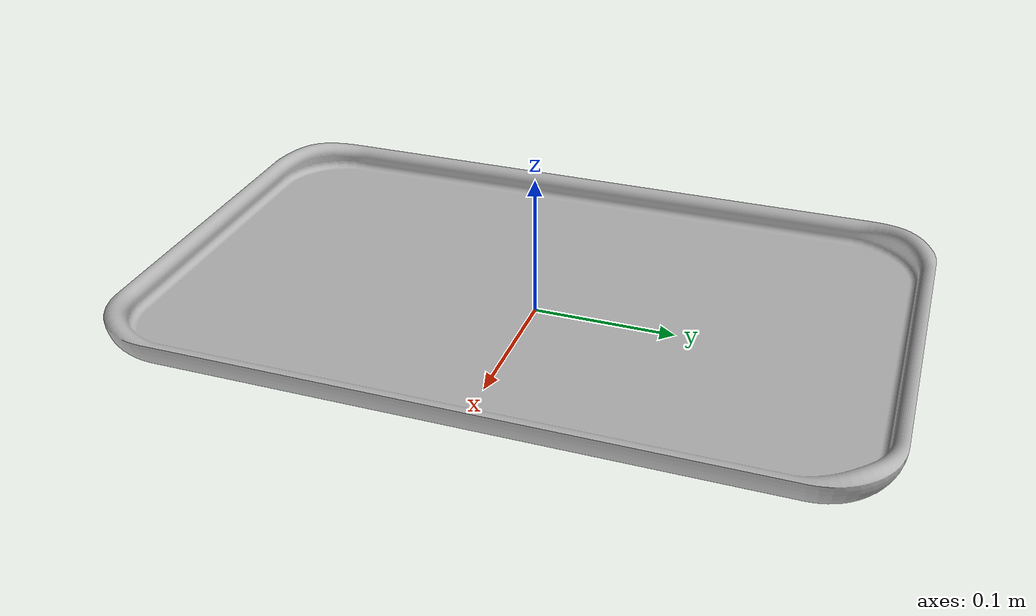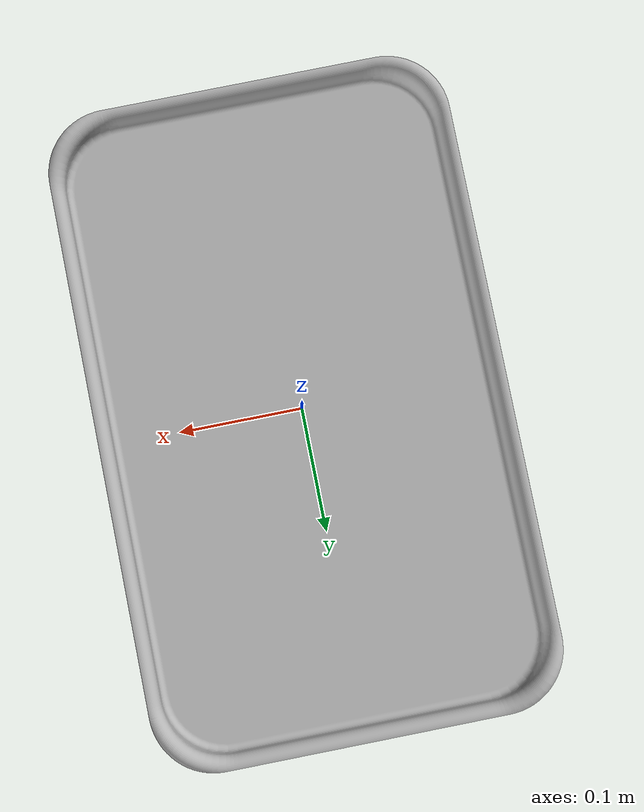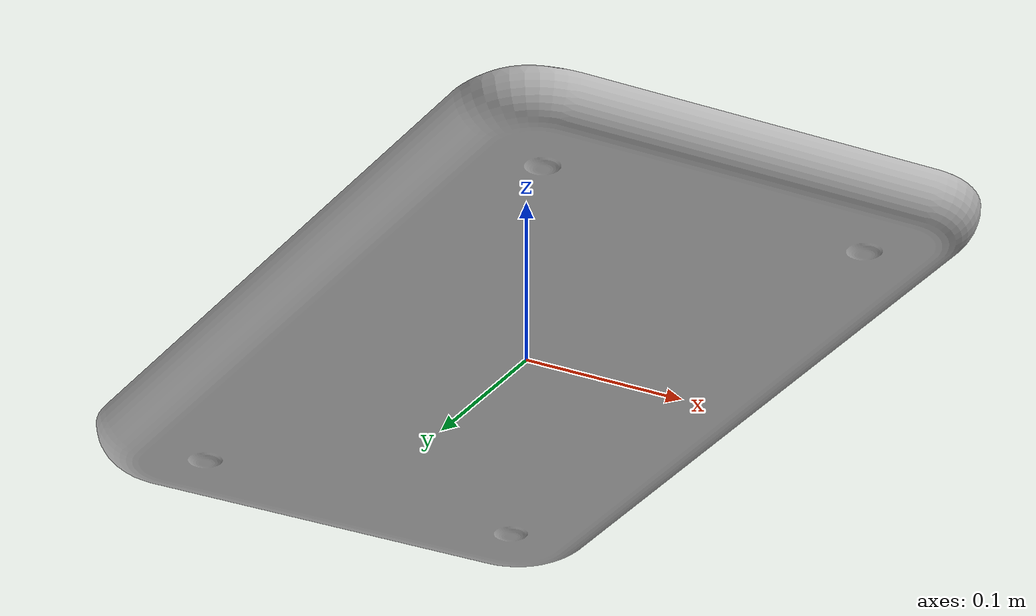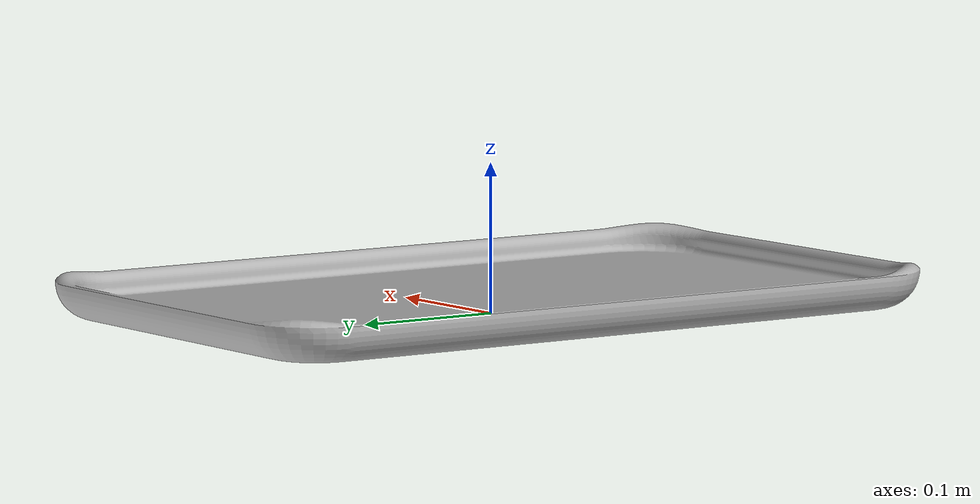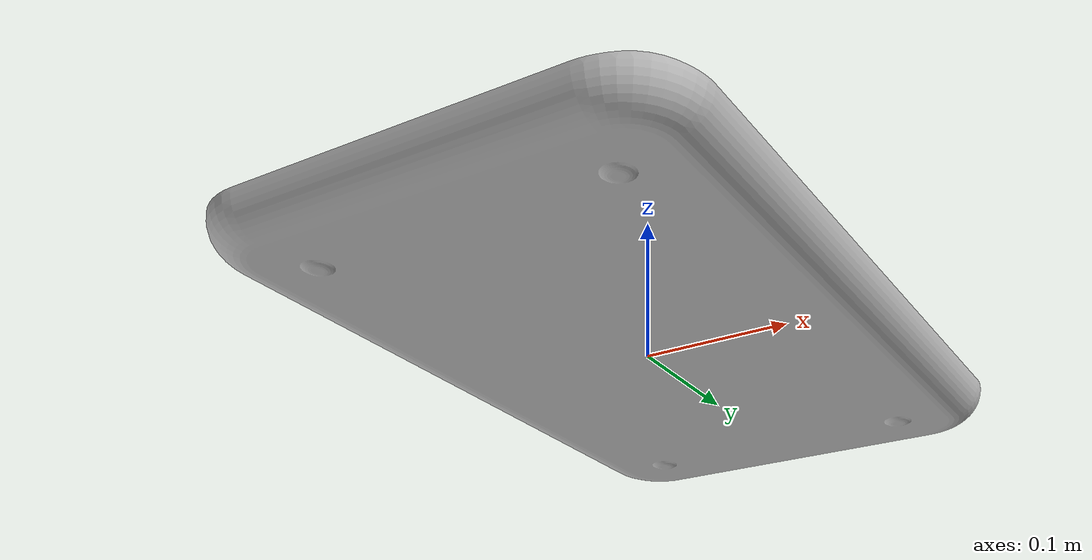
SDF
<?xml version='1.0' ?>
<sdf version="1.6">
    <model name="tray_link">
        <static>false</static>
        <link name="link">
            <collision name="collision">
                <pose>0 0 0.001 1.5708 0 1.5708</pose>
                <geometry>
                    <mesh>
                        <uri>meshes/o_tray_link_v2.obj</uri>
                    </mesh>
                </geometry>
            </collision>
            <visual name="visual">
                <pose>0 0 0.001 1.5708 0 1.5708</pose>
                <geometry>
                    <mesh>
                        <uri>meshes/o_tray_link_v2.obj</uri>
                    </mesh>
                </geometry>
            </visual>
        </link>
    </model>
</sdf>
